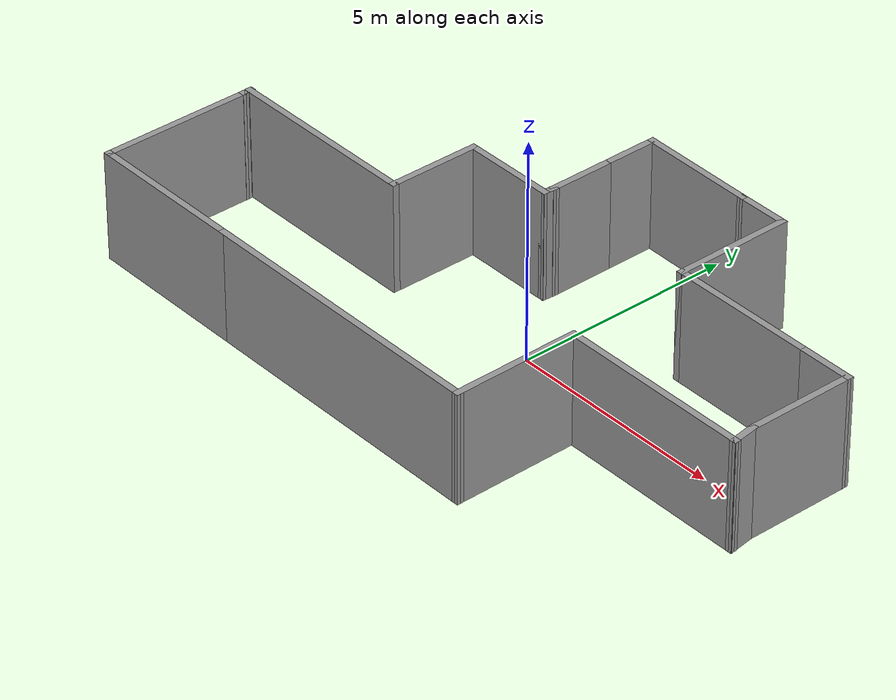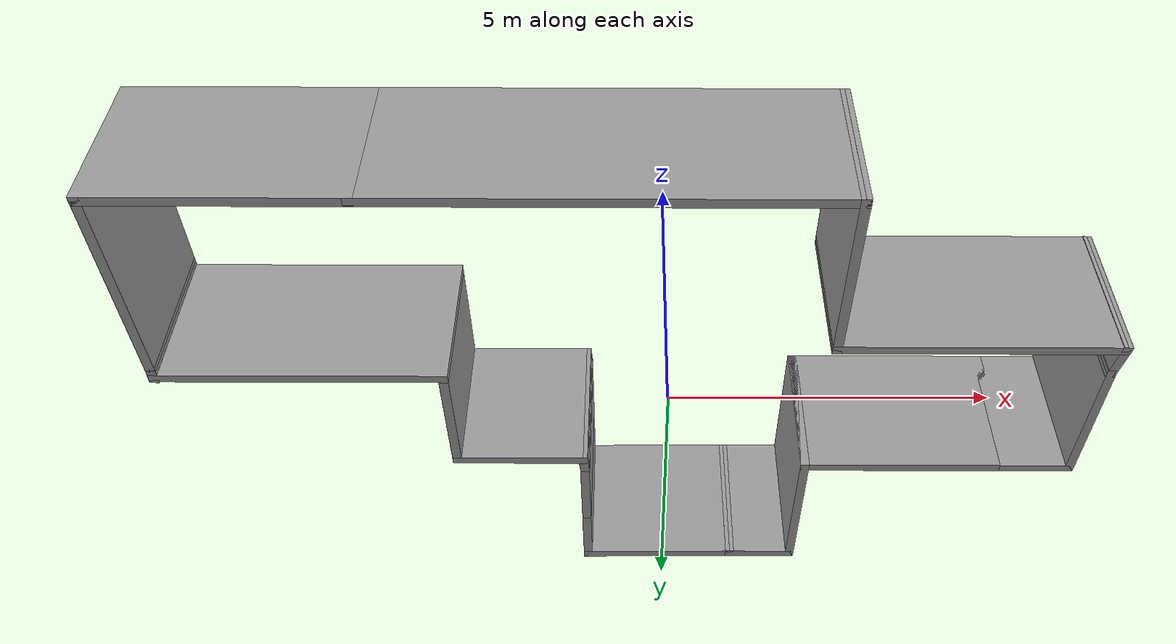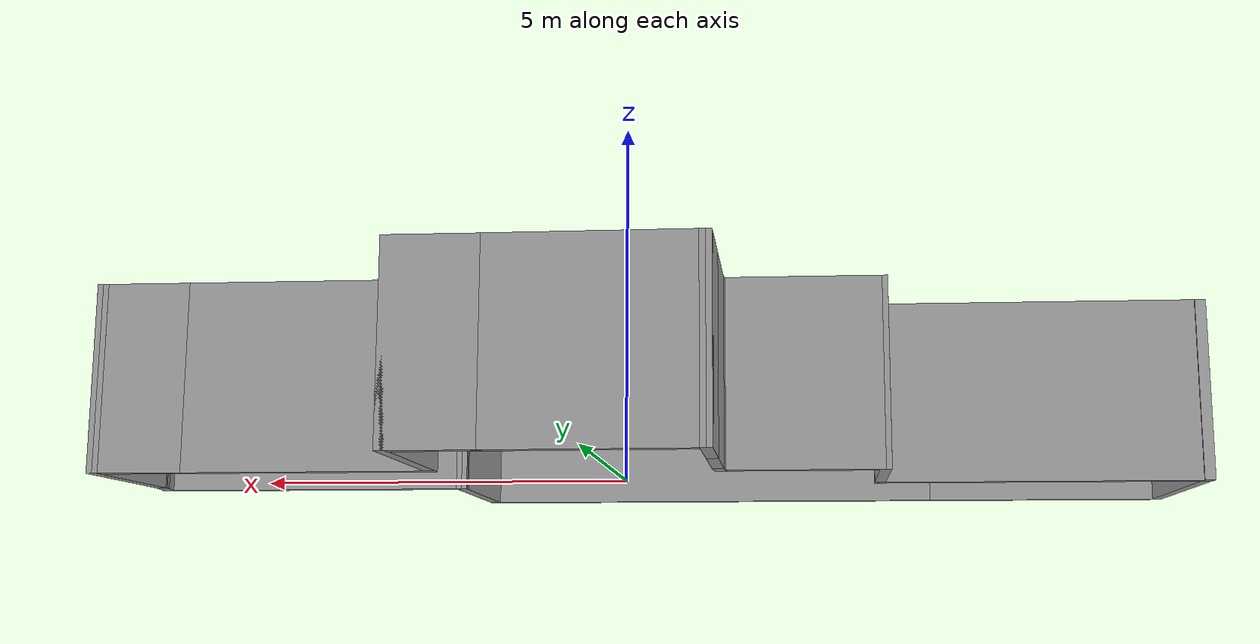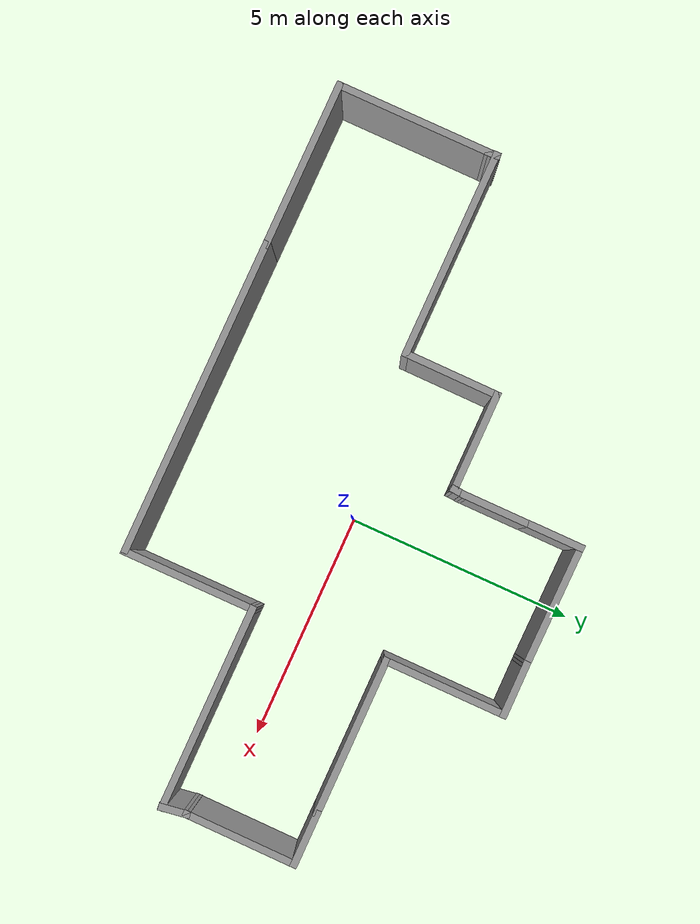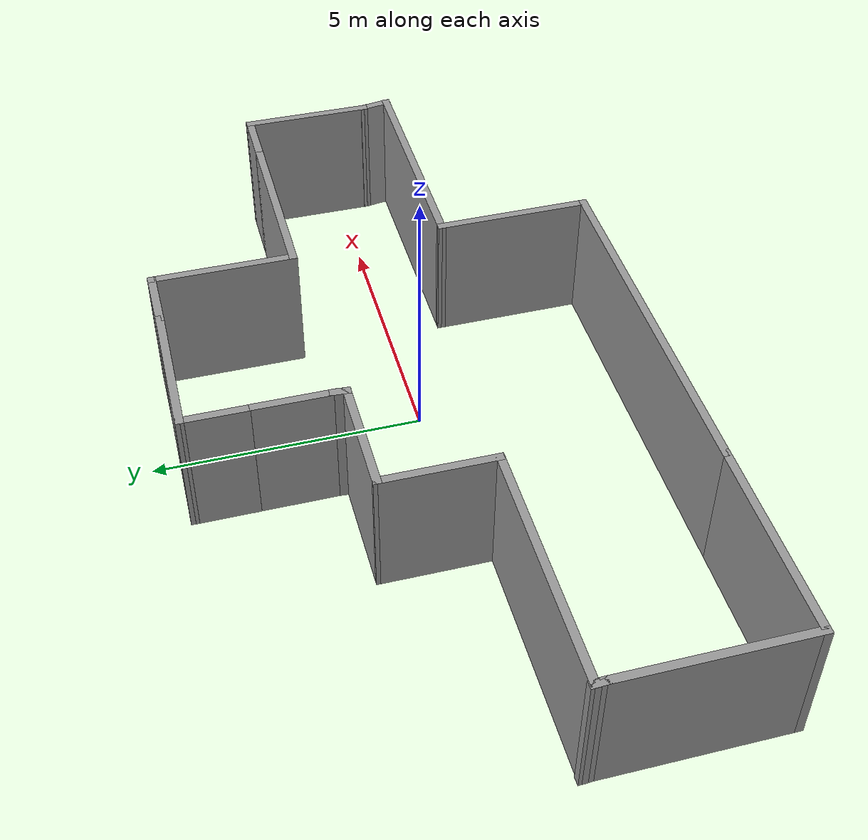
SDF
<?xml version='1.0'?>
<sdf version='1.7'>
  <model name='room2'>
    <pose>-0.535534 0.26273 0 0 -0 0</pose>
    <link name='Wall_0'>
      <collision name='Wall_0_Collision'>
        <geometry>
          <box>
            <size>2.17197 0.15 2.5</size>
          </box>
        </geometry>
        <pose>0 0 1.25 0 -0 0</pose>
      </collision>
      <visual name='Wall_0_Visual'>
        <pose>0 0 1.25 0 -0 0</pose>
        <geometry>
          <box>
            <size>2.17197 0.15 2.5</size>
          </box>
        </geometry>
        <material>
          <script>
            <uri>file://media/materials/scripts/gazebo.material</uri>
            <name>Gazebo/Grey</name>
          </script>
          <ambient>1 1 1 1</ambient>
        </material>
        <meta>
          <layer>0</layer>
        </meta>
      </visual>
      <pose>-2.94158 0.354312 0 0 -0 1.56654</pose>
    </link>
    <link name='Wall_10'>
      <collision name='Wall_10_Collision'>
        <geometry>
          <box>
            <size>2.75 0.15 2.5</size>
          </box>
        </geometry>
        <pose>0 0 1.25 0 -0 0</pose>
      </collision>
      <visual name='Wall_10_Visual'>
        <pose>0 0 1.25 0 -0 0</pose>
        <geometry>
          <box>
            <size>2.75 0.15 2.5</size>
          </box>
        </geometry>
        <material>
          <script>
            <uri>file://media/materials/scripts/gazebo.material</uri>
            <name>Gazebo/Grey</name>
          </script>
          <ambient>1 1 1 1</ambient>
        </material>
        <meta>
          <layer>0</layer>
        </meta>
      </visual>
      <pose>2.87776 2.84036 0 0 -0 -1.5708</pose>
    </link>
    <link name='Wall_11'>
      <collision name='Wall_11_Collision'>
        <geometry>
          <box>
            <size>3.5 0.15 2.5</size>
          </box>
        </geometry>
        <pose>0 0 1.25 0 -0 0</pose>
      </collision>
      <visual name='Wall_11_Visual'>
        <pose>0 0 1.25 0 -0 0</pose>
        <geometry>
          <box>
            <size>3.5 0.15 2.5</size>
          </box>
        </geometry>
        <material>
          <script>
            <uri>file://media/materials/scripts/gazebo.material</uri>
            <name>Gazebo/Grey</name>
          </script>
          <ambient>1 1 1 1</ambient>
        </material>
        <meta>
          <layer>0</layer>
        </meta>
      </visual>
      <pose>4.55276 1.54036 0 0 -0 0</pose>
    </link>
    <link name='Wall_13'>
      <collision name='Wall_13_Collision'>
        <geometry>
          <box>
            <size>1.25 0.15 2.5</size>
          </box>
        </geometry>
        <pose>0 0 1.25 0 -0 0</pose>
      </collision>
      <visual name='Wall_13_Visual'>
        <pose>0 0 1.25 0 -0 0</pose>
        <geometry>
          <box>
            <size>1.25 0.15 2.5</size>
          </box>
        </geometry>
        <material>
          <script>
            <uri>file://media/materials/scripts/gazebo.material</uri>
            <name>Gazebo/Grey</name>
          </script>
          <ambient>1 1 1 1</ambient>
        </material>
        <meta>
          <layer>0</layer>
        </meta>
      </visual>
      <pose>6.77776 1.54036 0 0 -0 0</pose>
    </link>
    <link name='Wall_15'>
      <collision name='Wall_15_Collision'>
        <geometry>
          <box>
            <size>2.52781 0.15 2.5</size>
          </box>
        </geometry>
        <pose>0 0 1.25 0 -0 0</pose>
      </collision>
      <visual name='Wall_15_Visual'>
        <pose>0 0 1.25 0 -0 0</pose>
        <geometry>
          <box>
            <size>2.52781 0.15 2.5</size>
          </box>
        </geometry>
        <material>
          <script>
            <uri>file://media/materials/scripts/gazebo.material</uri>
            <name>Gazebo/Grey</name>
          </script>
          <ambient>1 1 1 1</ambient>
        </material>
        <meta>
          <layer>0</layer>
        </meta>
      </visual>
      <pose>7.32346 0.351463 0 0 -0 -1.57441</pose>
    </link>
    <link name='Wall_19'>
      <collision name='Wall_19_Collision'>
        <geometry>
          <box>
            <size>2.98082 0.15 2.5</size>
          </box>
        </geometry>
        <pose>0 0 1.25 0 -0 0</pose>
      </collision>
      <visual name='Wall_19_Visual'>
        <pose>0 0 1.25 0 -0 0</pose>
        <geometry>
          <box>
            <size>2.98082 0.15 2.5</size>
          </box>
        </geometry>
        <material>
          <script>
            <uri>file://media/materials/scripts/gazebo.material</uri>
            <name>Gazebo/Grey</name>
          </script>
          <ambient>1 1 1 1</ambient>
        </material>
        <meta>
          <layer>0</layer>
        </meta>
      </visual>
      <pose>3.05084 -2.7601 0 0 -0 -1.56776</pose>
    </link>
    <link name='Wall_2'>
      <collision name='Wall_2_Collision'>
        <geometry>
          <box>
            <size>1.5 0.15 2.5</size>
          </box>
        </geometry>
        <pose>0 0 1.25 0 -0 0</pose>
      </collision>
      <visual name='Wall_2_Visual'>
        <pose>0 0 1.25 0 -0 0</pose>
        <geometry>
          <box>
            <size>1.5 0.15 2.5</size>
          </box>
        </geometry>
        <material>
          <script>
            <uri>file://media/materials/scripts/gazebo.material</uri>
            <name>Gazebo/Grey</name>
          </script>
          <ambient>1 1 1 1</ambient>
        </material>
        <meta>
          <layer>0</layer>
        </meta>
      </visual>
      <pose>-0.820088 2.26383 0 0 -0 1.5708</pose>
    </link>
    <link name='Wall_22'>
      <collision name='Wall_22_Collision'>
        <geometry>
          <box>
            <size>7 0.15 2.5</size>
          </box>
        </geometry>
        <pose>0 0 1.25 0 -0 0</pose>
      </collision>
      <visual name='Wall_22_Visual'>
        <pose>0 0 1.25 0 -0 0</pose>
        <geometry>
          <box>
            <size>7 0.15 2.5</size>
          </box>
        </geometry>
        <material>
          <script>
            <uri>file://media/materials/scripts/gazebo.material</uri>
            <name>Gazebo/Grey</name>
          </script>
          <ambient>1 1 1 1</ambient>
        </material>
        <meta>
          <layer>0</layer>
        </meta>
      </visual>
      <pose>-0.369863 -4.17551 0 0 -0 3.14159</pose>
    </link>
    <link name='Wall_24'>
      <collision name='Wall_24_Collision'>
        <geometry>
          <box>
            <size>3.75 0.15 2.5</size>
          </box>
        </geometry>
        <pose>0 0 1.25 0 -0 0</pose>
      </collision>
      <visual name='Wall_24_Visual'>
        <pose>0 0 1.25 0 -0 0</pose>
        <geometry>
          <box>
            <size>3.75 0.15 2.5</size>
          </box>
        </geometry>
        <material>
          <script>
            <uri>file://media/materials/scripts/gazebo.material</uri>
            <name>Gazebo/Grey</name>
          </script>
          <ambient>1 1 1 1</ambient>
        </material>
        <meta>
          <layer>0</layer>
        </meta>
      </visual>
      <pose>-5.59486 -4.17551 0 0 -0 3.14159</pose>
    </link>
    <link name='Wall_27'>
      <collision name='Wall_27_Collision'>
        <geometry>
          <box>
            <size>3.5 0.15 2.5</size>
          </box>
        </geometry>
        <pose>0 0 1.25 0 -0 0</pose>
      </collision>
      <visual name='Wall_27_Visual'>
        <pose>0 0 1.25 0 -0 0</pose>
        <geometry>
          <box>
            <size>3.5 0.15 2.5</size>
          </box>
        </geometry>
        <material>
          <script>
            <uri>file://media/materials/scripts/gazebo.material</uri>
            <name>Gazebo/Grey</name>
          </script>
          <ambient>1 1 1 1</ambient>
        </material>
        <meta>
          <layer>0</layer>
        </meta>
      </visual>
      <pose>-7.39486 -2.5005 0 0 -0 1.5708</pose>
    </link>
    <link name='Wall_29'>
      <collision name='Wall_29_Collision'>
        <geometry>
          <box>
            <size>0.328253 0.15 2.5</size>
          </box>
        </geometry>
        <pose>0 0 1.25 0 -0 0</pose>
      </collision>
      <visual name='Wall_29_Visual'>
        <pose>0 0 1.25 0 -0 0</pose>
        <geometry>
          <box>
            <size>0.328253 0.15 2.5</size>
          </box>
        </geometry>
        <material>
          <script>
            <uri>file://media/materials/scripts/gazebo.material</uri>
            <name>Gazebo/Grey</name>
          </script>
          <ambient>1 1 1 1</ambient>
        </material>
        <meta>
          <layer>0</layer>
        </meta>
      </visual>
      <pose>-7.39916 -0.736483 0 0 -0 1.61905</pose>
    </link>
    <link name='Wall_30'>
      <collision name='Wall_30_Collision'>
        <geometry>
          <box>
            <size>4.60857 0.15 2.5</size>
          </box>
        </geometry>
        <pose>0 0 1.25 0 -0 0</pose>
      </collision>
      <visual name='Wall_30_Visual'>
        <pose>0 0 1.25 0 -0 0</pose>
        <geometry>
          <box>
            <size>4.60857 0.15 2.5</size>
          </box>
        </geometry>
        <material>
          <script>
            <uri>file://media/materials/scripts/gazebo.material</uri>
            <name>Gazebo/Grey</name>
          </script>
          <ambient>1 1 1 1</ambient>
        </material>
        <meta>
          <layer>0</layer>
        </meta>
      </visual>
      <pose>-5.17467 -0.664959 0 0 -0 -0.000136</pose>
    </link>
    <link name='Wall_32'>
      <collision name='Wall_32_Collision'>
        <geometry>
          <box>
            <size>4.5 0.15 2.5</size>
          </box>
        </geometry>
        <pose>0 0 1.25 0 -0 0</pose>
      </collision>
      <visual name='Wall_32_Visual'>
        <pose>0 0 1.25 0 -0 0</pose>
        <geometry>
          <box>
            <size>4.5 0.15 2.5</size>
          </box>
        </geometry>
        <material>
          <script>
            <uri>file://media/materials/scripts/gazebo.material</uri>
            <name>Gazebo/Grey</name>
          </script>
          <ambient>1 1 1 1</ambient>
        </material>
        <meta>
          <layer>0</layer>
        </meta>
      </visual>
      <pose>5.22154 -1.3447 0 0 -0 0</pose>
    </link>
    <link name='Wall_33'>
      <collision name='Wall_33_Collision'>
        <geometry>
          <box>
            <size>0.663134 0.15 2.5</size>
          </box>
        </geometry>
        <pose>0 0 1.25 0 -0 0</pose>
      </collision>
      <visual name='Wall_33_Visual'>
        <pose>0 0 1.25 0 -0 0</pose>
        <geometry>
          <box>
            <size>0.663134 0.15 2.5</size>
          </box>
        </geometry>
        <material>
          <script>
            <uri>file://media/materials/scripts/gazebo.material</uri>
            <name>Gazebo/Grey</name>
          </script>
          <ambient>1 1 1 1</ambient>
        </material>
        <meta>
          <layer>0</layer>
        </meta>
      </visual>
      <pose>7.35785 -1.09107 0 0 -0 1.72217</pose>
    </link>
    <link name='Wall_35'>
      <collision name='Wall_35_Collision'>
        <geometry>
          <box>
            <size>2.25 0.15 2.5</size>
          </box>
        </geometry>
        <pose>0 0 1.25 0 -0 0</pose>
      </collision>
      <visual name='Wall_35_Visual'>
        <pose>0 0 1.25 0 -0 0</pose>
        <geometry>
          <box>
            <size>2.25 0.15 2.5</size>
          </box>
        </geometry>
        <material>
          <script>
            <uri>file://media/materials/scripts/gazebo.material</uri>
            <name>Gazebo/Grey</name>
          </script>
          <ambient>1 1 1 1</ambient>
        </material>
        <meta>
          <layer>0</layer>
        </meta>
      </visual>
      <pose>-1.88728 1.36529 0 0 -0 0</pose>
    </link>
    <link name='Wall_36'>
      <collision name='Wall_36_Collision'>
        <geometry>
          <box>
            <size>0.15 0.15 2.5</size>
          </box>
        </geometry>
        <pose>0 0 1.25 0 -0 0</pose>
      </collision>
      <visual name='Wall_36_Visual'>
        <pose>0 0 1.25 0 -0 0</pose>
        <geometry>
          <box>
            <size>0.15 0.15 2.5</size>
          </box>
        </geometry>
        <material>
          <script>
            <uri>file://media/materials/scripts/gazebo.material</uri>
            <name>Gazebo/Grey</name>
          </script>
          <ambient>1 1 1 1</ambient>
        </material>
        <meta>
          <layer>0</layer>
        </meta>
      </visual>
      <pose>-0.837284 1.36529 0 0 -0 0</pose>
    </link>
    <link name='Wall_37'>
      <collision name='Wall_37_Collision'>
        <geometry>
          <box>
            <size>0.374201 0.15 2.5</size>
          </box>
        </geometry>
        <pose>0 0 1.25 0 -0 0</pose>
      </collision>
      <visual name='Wall_37_Visual'>
        <pose>0 0 1.25 0 -0 0</pose>
        <geometry>
          <box>
            <size>0.374201 0.15 2.5</size>
          </box>
        </geometry>
        <material>
          <script>
            <uri>file://media/materials/scripts/gazebo.material</uri>
            <name>Gazebo/Grey</name>
          </script>
          <ambient>1 1 1 1</ambient>
        </material>
        <meta>
          <layer>0</layer>
        </meta>
      </visual>
      <pose>-0.828686 1.47706 0 0 -0 1.49402</pose>
    </link>
    <link name='Wall_4'>
      <collision name='Wall_4_Collision'>
        <geometry>
          <box>
            <size>1.25 0.15 2.5</size>
          </box>
        </geometry>
        <pose>0 0 1.25 0 -0 0</pose>
      </collision>
      <visual name='Wall_4_Visual'>
        <pose>0 0 1.25 0 -0 0</pose>
        <geometry>
          <box>
            <size>1.25 0.15 2.5</size>
          </box>
        </geometry>
        <material>
          <script>
            <uri>file://media/materials/scripts/gazebo.material</uri>
            <name>Gazebo/Grey</name>
          </script>
          <ambient>1 1 1 1</ambient>
        </material>
        <meta>
          <layer>0</layer>
        </meta>
      </visual>
      <pose>-0.822242 3.62475 0 0 -0 1.5708</pose>
    </link>
    <link name='Wall_6'>
      <collision name='Wall_6_Collision'>
        <geometry>
          <box>
            <size>2.75 0.15 2.5</size>
          </box>
        </geometry>
        <pose>0 0 1.25 0 -0 0</pose>
      </collision>
      <visual name='Wall_6_Visual'>
        <pose>0 0 1.25 0 -0 0</pose>
        <geometry>
          <box>
            <size>2.75 0.15 2.5</size>
          </box>
        </geometry>
        <material>
          <script>
            <uri>file://media/materials/scripts/gazebo.material</uri>
            <name>Gazebo/Grey</name>
          </script>
          <ambient>1 1 1 1</ambient>
        </material>
        <meta>
          <layer>0</layer>
        </meta>
      </visual>
      <pose>0.477757 4.15755 0 0 -0 -0.013227</pose>
    </link>
    <link name='Wall_9'>
      <collision name='Wall_9_Collision'>
        <geometry>
          <box>
            <size>1.25 0.15 2.5</size>
          </box>
        </geometry>
        <pose>0 0 1.25 0 -0 0</pose>
      </collision>
      <visual name='Wall_9_Visual'>
        <pose>0 0 1.25 0 -0 0</pose>
        <geometry>
          <box>
            <size>1.25 0.15 2.5</size>
          </box>
        </geometry>
        <material>
          <script>
            <uri>file://media/materials/scripts/gazebo.material</uri>
            <name>Gazebo/Grey</name>
          </script>
          <ambient>1 1 1 1</ambient>
        </material>
        <meta>
          <layer>0</layer>
        </meta>
      </visual>
      <pose>2.32776 4.14036 0 0 -0 0</pose>
    </link>
    <static>1</static>
  </model>
</sdf>
